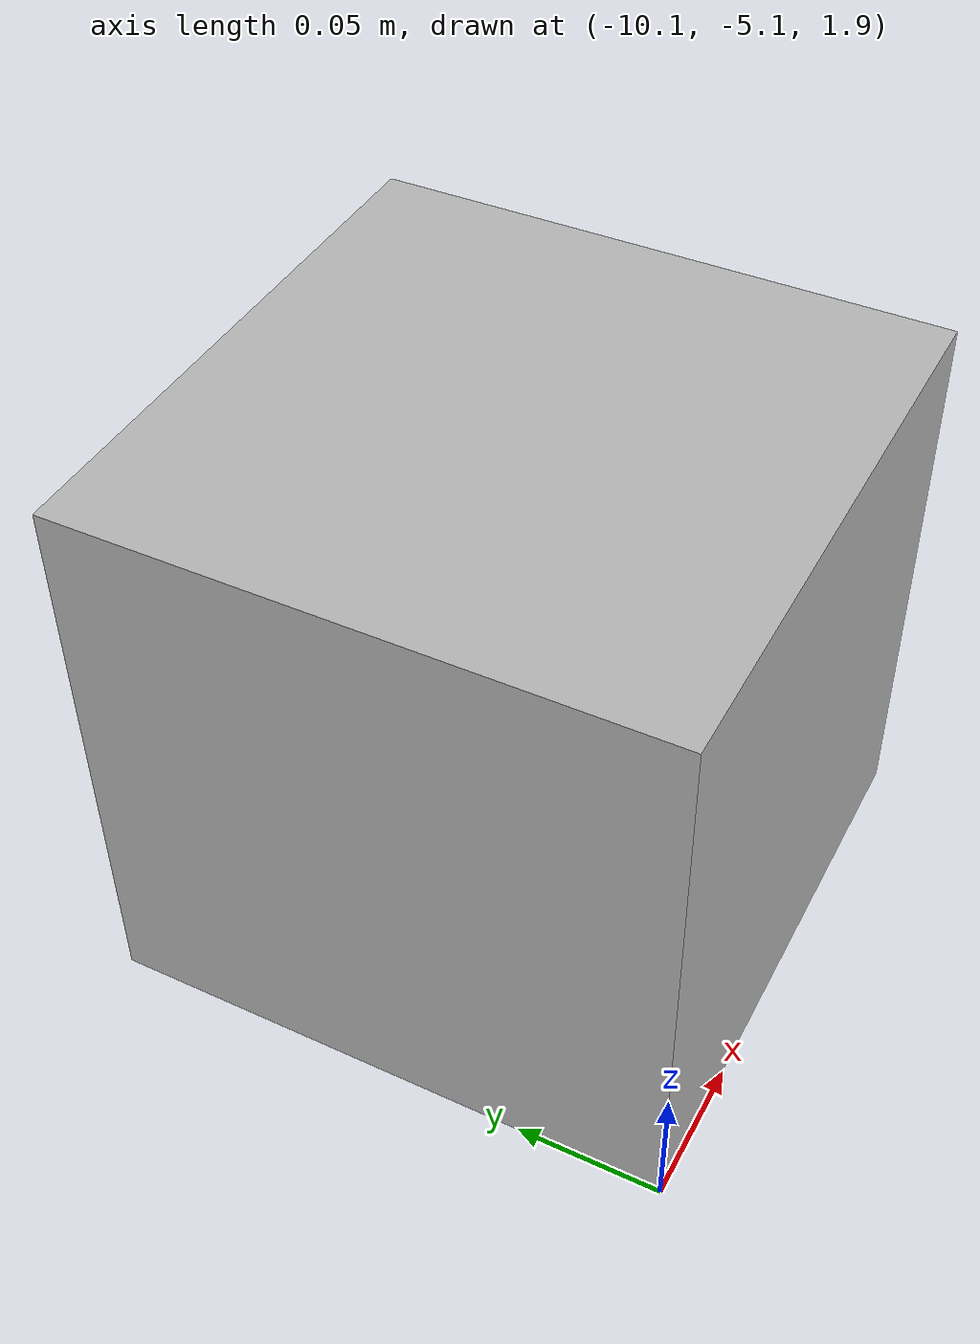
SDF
<?xml version='1.0'?>
<sdf version="1.4">
  <model name="uwb_anchor3">
      <pose>-10 -5 2 0 0 0</pose>
      <static>1</static>
      <link name="link">
        <visual name="visual">
          <geometry>
            <box>
              <size>0.2 0.2 0.2</size>
            </box>
          </geometry>
        </visual>
      </link>
    </model>
</sdf>
